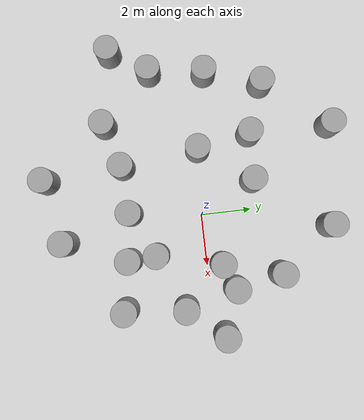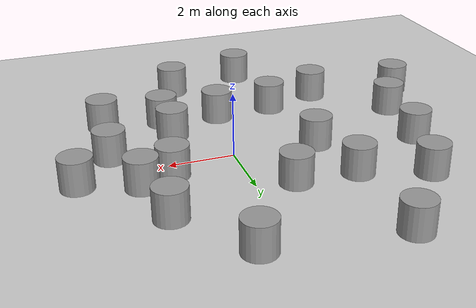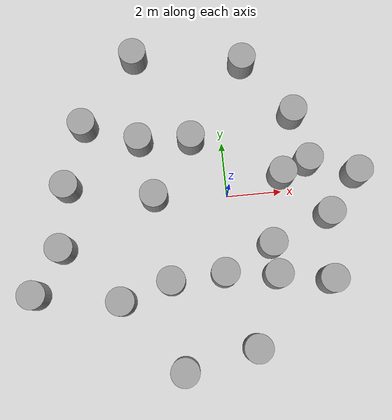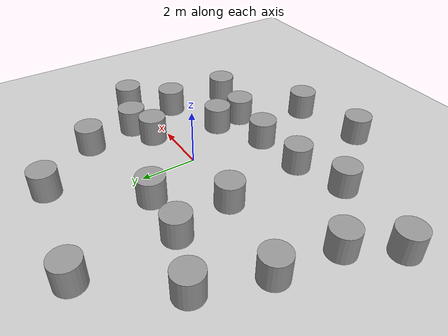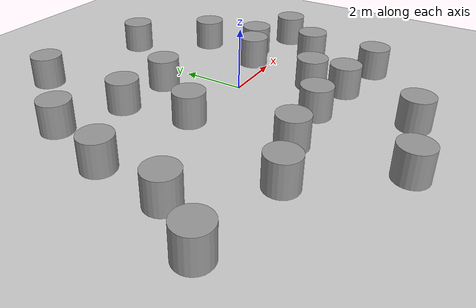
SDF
<sdf version="1.7">
 <world name="default">
  <light name="sun" type="directional">
   <pose>0 0 10 0 -0 0</pose>
   <diffuse>0.8 0.8 0.8 1</diffuse>
   <specular>0.2 0.2 0.2 1</specular>
   <attenuation>
    <range>1000</range>
    <constant>0.9</constant>
    <linear>0.01</linear>
    <quadratic>0.001</quadratic>
   </attenuation>
   <direction>-0.5 0.1 -0.9</direction>
   <spot><inner_angle>0</inner_angle><outer_angle>0</outer_angle><falloff>0</falloff></spot>
  </light>
  <model name="ground_plane">
   <static>1</static>
   <link name="link">
    <collision name="collision">
     <geometry><plane><normal>0 0 1</normal><size>100 100</size></plane></geometry>
     <surface>
      <contact><collide_bitmask>65535</collide_bitmask></contact>
      <friction><ode><mu>100</mu><mu2>50</mu2></ode></friction>
     </surface>
    </collision>
    <visual name="visual">
     <cast_shadows>0</cast_shadows>
     <geometry><plane><normal>0 0 1</normal><size>100 100</size></plane></geometry>
     <material>
      <script><uri>file://media/materials/scripts/gazebo.material</uri><name>Gazebo/Grey</name></script>
     </material>
    </visual>
   </link>
  </model>
  <gravity>0 0 -9.8</gravity>
  <magnetic_field>6e-06 2.3e-05 -4.2e-05</magnetic_field>
  <atmosphere type="adiabatic"/>
  <physics type="ode">
   <max_step_size>0.001</max_step_size>
   <real_time_factor>1</real_time_factor>
   <real_time_update_rate>1000</real_time_update_rate>
  </physics>
  <scene><ambient>0.4 0.4 0.4 1</ambient><background>0.7 0.7 0.7 1</background><shadows>1</shadows></scene>
  <spherical_coordinates>
   <surface_model>EARTH_WGS84</surface_model>
   <latitude_deg>0</latitude_deg>
   <longitude_deg>0</longitude_deg>
   <elevation>0</elevation>
   <heading_deg>0</heading_deg>
  </spherical_coordinates>
  <model name="unit_cylinder">
   <pose>-5.72406 0.761004 0.499993 -3e-06 3e-06 0</pose>
   <link name="link">
    <inertial>
     <mass>1</mass>
     <inertia><ixx>0.145833</ixx><ixy>0</ixy><ixz>0</ixz><iyy>0.145833</iyy><iyz>0</iyz><izz>0.125</izz></inertia>
    </inertial>
    <collision name="collision">
     <geometry><cylinder><radius>0.5</radius><length>1</length></cylinder></geometry>
    </collision>
    <visual name="visual">
     <geometry><cylinder><radius>0.5</radius><length>1</length></cylinder></geometry>
     <material>
      <script><name>Gazebo/Grey</name><uri>file://media/materials/scripts/gazebo.material</uri></script>
     </material>
    </visual>
   </link>
  </model>
  <model name="unit_cylinder_0">
   <pose>0.518774 -5.44042 0.499992 -3e-06 3e-06 0</pose>
   <link name="link">
    <inertial>
     <mass>1</mass>
     <inertia><ixx>0.145833</ixx><ixy>0</ixy><ixz>0</ixz><iyy>0.145833</iyy><iyz>0</iyz><izz>0.125</izz></inertia>
    </inertial>
    <collision name="collision">
     <geometry><cylinder><radius>0.5</radius><length>1</length></cylinder></geometry>
    </collision>
    <visual name="visual">
     <geometry><cylinder><radius>0.5</radius><length>1</length></cylinder></geometry>
     <material>
      <script><name>Gazebo/Grey</name><uri>file://media/materials/scripts/gazebo.material</uri></script>
     </material>
    </visual>
   </link>
  </model>
  <model name="unit_cylinder_1">
   <pose>-2.23023 -2.91931 0.499992 -3e-06 3e-06 0</pose>
   <link name="link">
    <inertial>
     <mass>1</mass>
     <inertia><ixx>0.145833</ixx><ixy>0</ixy><ixz>0</ixz><iyy>0.145833</iyy><iyz>0</iyz><izz>0.125</izz></inertia>
    </inertial>
    <collision name="collision">
     <geometry><cylinder><radius>0.5</radius><length>1</length></cylinder></geometry>
    </collision>
    <visual name="visual">
     <geometry><cylinder><radius>0.5</radius><length>1</length></cylinder></geometry>
     <material>
      <script><name>Gazebo/Grey</name><uri>file://media/materials/scripts/gazebo.material</uri></script>
     </material>
    </visual>
   </link>
  </model>
  <model name="unit_cylinder_2">
   <pose>3.35243 -3.3261 0.499992 -3e-06 3e-06 0</pose>
   <link name="link">
    <inertial>
     <mass>1</mass>
     <inertia><ixx>0.145833</ixx><ixy>0</ixy><ixz>0</ixz><iyy>0.145833</iyy><iyz>0</iyz><izz>0.125</izz></inertia>
    </inertial>
    <collision name="collision">
     <geometry><cylinder><radius>0.5</radius><length>1</length></cylinder></geometry>
    </collision>
    <visual name="visual">
     <geometry><cylinder><radius>0.5</radius><length>1</length></cylinder></geometry>
     <material>
      <script><name>Gazebo/Grey</name><uri>file://media/materials/scripts/gazebo.material</uri></script>
     </material>
    </visual>
   </link>
  </model>
  <model name="unit_cylinder_3">
   <pose>4.69544 0.399173 0.499992 -3e-06 3e-06 0</pose>
   <link name="link">
    <inertial>
     <mass>1</mass>
     <inertia><ixx>0.145833</ixx><ixy>0</ixy><ixz>0</ixz><iyy>0.145833</iyy><iyz>0</iyz><izz>0.125</izz></inertia>
    </inertial>
    <collision name="collision">
     <geometry><cylinder><radius>0.5</radius><length>1</length></cylinder></geometry>
    </collision>
    <visual name="visual">
     <geometry><cylinder><radius>0.5</radius><length>1</length></cylinder></geometry>
     <material>
      <script><name>Gazebo/Grey</name><uri>file://media/materials/scripts/gazebo.material</uri></script>
     </material>
    </visual>
   </link>
  </model>
  <model name="unit_cylinder_4">
   <pose>1.39803 -1.90959 0.499992 -3e-06 3e-06 0</pose>
   <link name="link">
    <inertial>
     <mass>1</mass>
     <inertia><ixx>0.145833</ixx><ixy>0</ixy><ixz>0</ixz><iyy>0.145833</iyy><iyz>0</iyz><izz>0.125</izz></inertia>
    </inertial>
    <collision name="collision">
     <geometry><cylinder><radius>0.5</radius><length>1</length></cylinder></geometry>
    </collision>
    <visual name="visual">
     <geometry><cylinder><radius>0.5</radius><length>1</length></cylinder></geometry>
     <material>
      <script><name>Gazebo/Grey</name><uri>file://media/materials/scripts/gazebo.material</uri></script>
     </material>
    </visual>
   </link>
  </model>
  <model name="unit_cylinder_5">
   <pose>-2.60775 0.153517 0.499998 3e-06 -3e-06 0</pose>
   <link name="link">
    <inertial>
     <mass>1</mass>
     <inertia><ixx>0.145833</ixx><ixy>0</ixy><ixz>0</ixz><iyy>0.145833</iyy><iyz>0</iyz><izz>0.125</izz></inertia>
    </inertial>
    <collision name="collision">
     <geometry><cylinder><radius>0.5</radius><length>1</length></cylinder></geometry>
    </collision>
    <visual name="visual">
     <geometry><cylinder><radius>0.5</radius><length>1</length></cylinder></geometry>
     <material>
      <script><name>Gazebo/Grey</name><uri>file://media/materials/scripts/gazebo.material</uri></script>
     </material>
    </visual>
   </link>
  </model>
  <model name="unit_cylinder_6">
   <pose>-1.12545 2.18419 0.499992 -3e-06 4e-06 0</pose>
   <link name="link">
    <inertial>
     <mass>1</mass>
     <inertia><ixx>0.145833</ixx><ixy>0</ixy><ixz>0</ixz><iyy>0.145833</iyy><iyz>0</iyz><izz>0.125</izz></inertia>
    </inertial>
    <collision name="collision">
     <geometry><cylinder><radius>0.5</radius><length>1</length></cylinder></geometry>
    </collision>
    <visual name="visual">
     <geometry><cylinder><radius>0.5</radius><length>1</length></cylinder></geometry>
     <material>
      <script><name>Gazebo/Grey</name><uri>file://media/materials/scripts/gazebo.material</uri></script>
     </material>
    </visual>
   </link>
  </model>
  <model name="unit_cylinder_7">
   <pose>2.01833 0.5918 0.499992 -3e-06 4e-06 0</pose>
   <link name="link">
    <inertial>
     <mass>1</mass>
     <inertia><ixx>0.145833</ixx><ixy>0</ixy><ixz>0</ixz><iyy>0.145833</iyy><iyz>0</iyz><izz>0.125</izz></inertia>
    </inertial>
    <collision name="collision">
     <geometry><cylinder><radius>0.5</radius><length>1</length></cylinder></geometry>
    </collision>
    <visual name="visual">
     <geometry><cylinder><radius>0.5</radius><length>1</length></cylinder></geometry>
     <material>
      <script><name>Gazebo/Grey</name><uri>file://media/materials/scripts/gazebo.material</uri></script>
     </material>
    </visual>
   </link>
  </model>
  <model name="unit_cylinder_6_clone">
   <pose>2.64051 2.83774 0.499998 3e-06 -4e-06 0</pose>
   <link name="link">
    <inertial>
     <mass>1</mass>
     <inertia><ixx>0.145833</ixx><ixy>0</ixy><ixz>0</ixz><iyy>0.145833</iyy><iyz>0</iyz><izz>0.125</izz></inertia>
    </inertial>
    <collision name="collision">
     <geometry><cylinder><radius>0.5</radius><length>1</length></cylinder></geometry>
    </collision>
    <visual name="visual">
     <geometry><cylinder><radius>0.5</radius><length>1</length></cylinder></geometry>
     <material>
      <script><name>Gazebo/Grey</name><uri>file://media/materials/scripts/gazebo.material</uri></script>
     </material>
    </visual>
   </link>
  </model>
  <model name="unit_cylinder_6_clone_0">
   <pose>-3.01261 2.27719 0.499992 -3e-06 4e-06 0</pose>
   <link name="link">
    <inertial>
     <mass>1</mass>
     <inertia><ixx>0.145833</ixx><ixy>0</ixy><ixz>0</ixz><iyy>0.145833</iyy><iyz>0</iyz><izz>0.125</izz></inertia>
    </inertial>
    <collision name="collision">
     <geometry><cylinder><radius>0.5</radius><length>1</length></cylinder></geometry>
    </collision>
    <visual name="visual">
     <geometry><cylinder><radius>0.5</radius><length>1</length></cylinder></geometry>
     <material>
      <script><name>Gazebo/Grey</name><uri>file://media/materials/scripts/gazebo.material</uri></script>
     </material>
    </visual>
   </link>
  </model>
  <model name="unit_cylinder_6_clone_1">
   <pose>-0.345584 -2.79548 0.499992 -3e-06 4e-06 0</pose>
   <link name="link">
    <inertial>
     <mass>1</mass>
     <inertia><ixx>0.145833</ixx><ixy>0</ixy><ixz>0</ixz><iyy>0.145833</iyy><iyz>0</iyz><izz>0.125</izz></inertia>
    </inertial>
    <collision name="collision">
     <geometry><cylinder><radius>0.5</radius><length>1</length></cylinder></geometry>
    </collision>
    <visual name="visual">
     <geometry><cylinder><radius>0.5</radius><length>1</length></cylinder></geometry>
     <material>
      <script><name>Gazebo/Grey</name><uri>file://media/materials/scripts/gazebo.material</uri></script>
     </material>
    </visual>
   </link>
  </model>
  <model name="unit_cylinder_6_clone_2">
   <pose>-2 -6 0.499992 -3e-06 4e-06 0</pose>
   <link name="link">
    <inertial>
     <mass>1</mass>
     <inertia><ixx>0.145833</ixx><ixy>0</ixy><ixz>0</ixz><iyy>0.145833</iyy><iyz>0</iyz><izz>0.125</izz></inertia>
    </inertial>
    <collision name="collision">
     <geometry><cylinder><radius>0.5</radius><length>1</length></cylinder></geometry>
    </collision>
    <visual name="visual">
     <geometry><cylinder><radius>0.5</radius><length>1</length></cylinder></geometry>
     <material>
      <script><name>Gazebo/Grey</name><uri>file://media/materials/scripts/gazebo.material</uri></script>
     </material>
    </visual>
   </link>
  </model>
  <model name="unit_cylinder_6_clone_3">
   <pose>-6 -1.46488 0.499992 -3e-06 4e-06 0</pose>
   <link name="link">
    <inertial>
     <mass>1</mass>
     <inertia><ixx>0.145833</ixx><ixy>0</ixy><ixz>0</ixz><iyy>0.145833</iyy><iyz>0</iyz><izz>0.125</izz></inertia>
    </inertial>
    <collision name="collision">
     <geometry><cylinder><radius>0.5</radius><length>1</length></cylinder></geometry>
    </collision>
    <visual name="visual">
     <geometry><cylinder><radius>0.5</radius><length>1</length></cylinder></geometry>
     <material>
      <script><name>Gazebo/Grey</name><uri>file://media/materials/scripts/gazebo.material</uri></script>
     </material>
    </visual>
   </link>
  </model>
  <model name="unit_cylinder_6_clone_4">
   <pose>-3 5.53206 0.499992 -3e-06 -4e-06 -0</pose>
   <link name="link">
    <inertial>
     <mass>1</mass>
     <inertia><ixx>0.145833</ixx><ixy>0</ixy><ixz>0</ixz><iyy>0.145833</iyy><iyz>0</iyz><izz>0.125</izz></inertia>
    </inertial>
    <collision name="collision">
     <geometry><cylinder><radius>0.5</radius><length>1</length></cylinder></geometry>
    </collision>
    <visual name="visual">
     <geometry><cylinder><radius>0.5</radius><length>1</length></cylinder></geometry>
     <material>
      <script><name>Gazebo/Grey</name><uri>file://media/materials/scripts/gazebo.material</uri></script>
     </material>
    </visual>
   </link>
  </model>
  <model name="unit_cylinder_6_clone_5">
   <pose>1 5 0.499992 -3e-06 -4e-06 -0</pose>
   <link name="link">
    <inertial>
     <mass>1</mass>
     <inertia><ixx>0.145833</ixx><ixy>0</ixy><ixz>0</ixz><iyy>0.145833</iyy><iyz>0</iyz><izz>0.125</izz></inertia>
    </inertial>
    <collision name="collision">
     <geometry><cylinder><radius>0.5</radius><length>1</length></cylinder></geometry>
    </collision>
    <visual name="visual">
     <geometry><cylinder><radius>0.5</radius><length>1</length></cylinder></geometry>
     <material>
      <script><name>Gazebo/Grey</name><uri>file://media/materials/scripts/gazebo.material</uri></script>
     </material>
    </visual>
   </link>
  </model>
  <model name="unit_cylinder_6_clone_6">
   <pose>-5 3 0.499998 3e-06 4e-06 -0</pose>
   <link name="link">
    <inertial>
     <mass>1</mass>
     <inertia><ixx>0.145833</ixx><ixy>0</ixy><ixz>0</ixz><iyy>0.145833</iyy><iyz>0</iyz><izz>0.125</izz></inertia>
    </inertial>
    <collision name="collision">
     <geometry><cylinder><radius>0.5</radius><length>1</length></cylinder></geometry>
    </collision>
    <visual name="visual">
     <geometry><cylinder><radius>0.5</radius><length>1</length></cylinder></geometry>
     <material>
      <script><name>Gazebo/Grey</name><uri>file://media/materials/scripts/gazebo.material</uri></script>
     </material>
    </visual>
   </link>
  </model>
  <model name="unit_cylinder_6_clone_7">
   <pose>1.47958 -3 0.499997 3e-06 3e-06 0</pose>
   <link name="link">
    <inertial>
     <mass>1</mass>
     <inertia><ixx>0.145833</ixx><ixy>0</ixy><ixz>0</ixz><iyy>0.145833</iyy><iyz>0</iyz><izz>0.125</izz></inertia>
    </inertial>
    <collision name="collision">
     <geometry><cylinder><radius>0.5</radius><length>1</length></cylinder></geometry>
    </collision>
    <visual name="visual">
     <geometry><cylinder><radius>0.5</radius><length>1</length></cylinder></geometry>
     <material>
      <script><name>Gazebo/Grey</name><uri>file://media/materials/scripts/gazebo.material</uri></script>
     </material>
    </visual>
   </link>
  </model>
  <model name="unit_cylinder_6_clone_8">
   <pose>3.53689 -1 0.499997 3e-06 4e-06 -0</pose>
   <link name="link">
    <inertial>
     <mass>1</mass>
     <inertia><ixx>0.145833</ixx><ixy>0</ixy><ixz>0</ixz><iyy>0.145833</iyy><iyz>0</iyz><izz>0.125</izz></inertia>
    </inertial>
    <collision name="collision">
     <geometry><cylinder><radius>0.5</radius><length>1</length></cylinder></geometry>
    </collision>
    <visual name="visual">
     <geometry><cylinder><radius>0.5</radius><length>1</length></cylinder></geometry>
     <material>
      <script><name>Gazebo/Grey</name><uri>file://media/materials/scripts/gazebo.material</uri></script>
     </material>
    </visual>
   </link>
  </model>
  <model name="unit_cylinder_6_clone_9">
   <pose>3 1 0.499993 -3e-06 -4e-06 -0</pose>
   <link name="link">
    <inertial>
     <mass>1</mass>
     <inertia><ixx>0.145833</ixx><ixy>0</ixy><ixz>0</ixz><iyy>0.145833</iyy><iyz>0</iyz><izz>0.125</izz></inertia>
    </inertial>
    <collision name="collision">
     <geometry><cylinder><radius>0.5</radius><length>1</length></cylinder></geometry>
    </collision>
    <visual name="visual">
     <geometry><cylinder><radius>0.5</radius><length>1</length></cylinder></geometry>
     <material>
      <script><name>Gazebo/Grey</name><uri>file://media/materials/scripts/gazebo.material</uri></script>
     </material>
    </visual>
   </link>
  </model>
  <model name="unit_cylinder_6_clone_10">
   <pose>-4 -3.47605 0.499993 -3e-06 -4e-06 -0</pose>
   <link name="link">
    <inertial>
     <mass>1</mass>
     <inertia><ixx>0.145833</ixx><ixy>0</ixy><ixz>0</ixz><iyy>0.145833</iyy><iyz>0</iyz><izz>0.125</izz></inertia>
    </inertial>
    <collision name="collision">
     <geometry><cylinder><radius>0.5</radius><length>1</length></cylinder></geometry>
    </collision>
    <visual name="visual">
     <geometry><cylinder><radius>0.5</radius><length>1</length></cylinder></geometry>
     <material>
      <script><name>Gazebo/Grey</name><uri>file://media/materials/scripts/gazebo.material</uri></script>
     </material>
    </visual>
   </link>
  </model>
  <model name="unit_cylinder_6_clone_11">
   <pose>-7 -3 0.499997 3e-06 4e-06 -0</pose>
   <link name="link">
    <inertial>
     <mass>1</mass>
     <inertia><ixx>0.145833</ixx><ixy>0</ixy><ixz>0</ixz><iyy>0.145833</iyy><iyz>0</iyz><izz>0.125</izz></inertia>
    </inertial>
    <collision name="collision">
     <geometry><cylinder><radius>0.5</radius><length>1</length></cylinder></geometry>
    </collision>
    <visual name="visual">
     <geometry><cylinder><radius>0.5</radius><length>1</length></cylinder></geometry>
     <material>
      <script><name>Gazebo/Grey</name><uri>file://media/materials/scripts/gazebo.material</uri></script>
     </material>
    </visual>
   </link>
  </model>
 </world>
</sdf>
